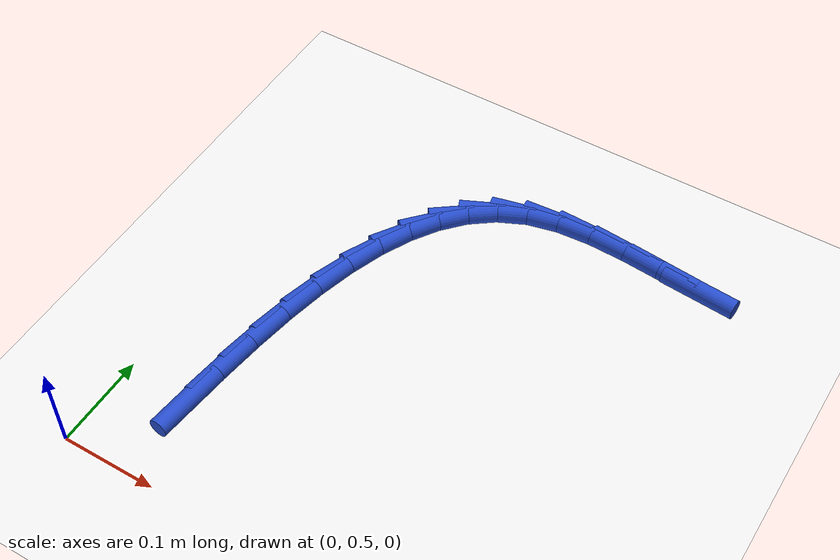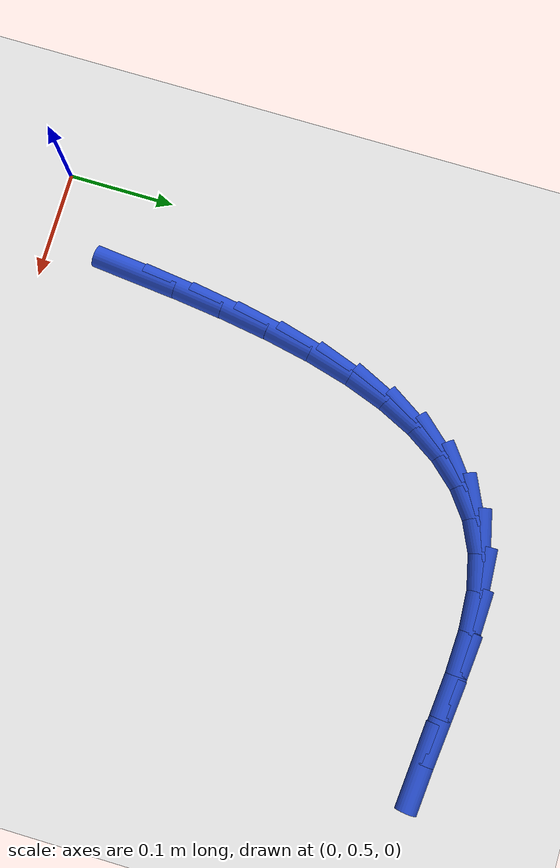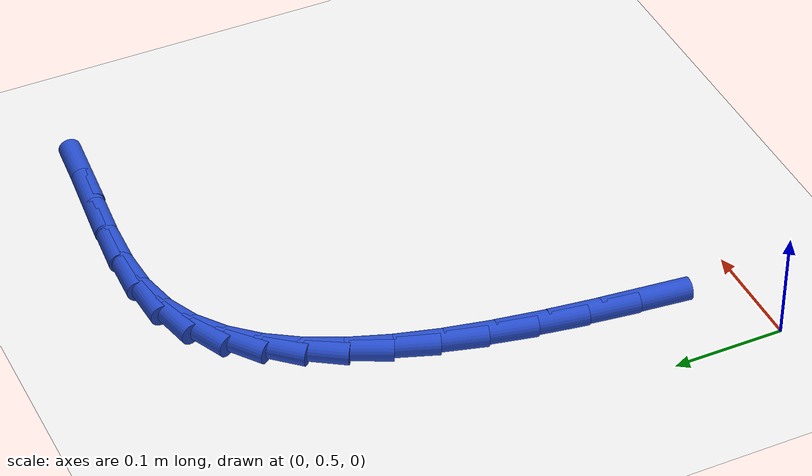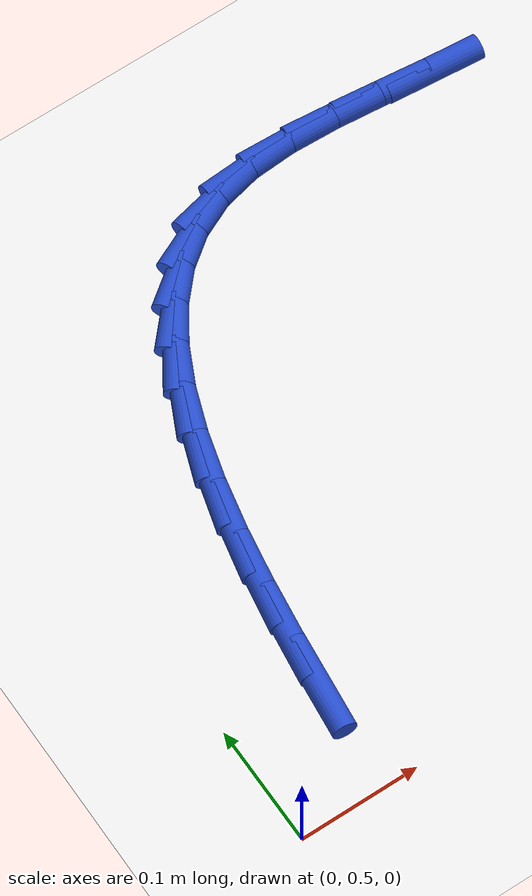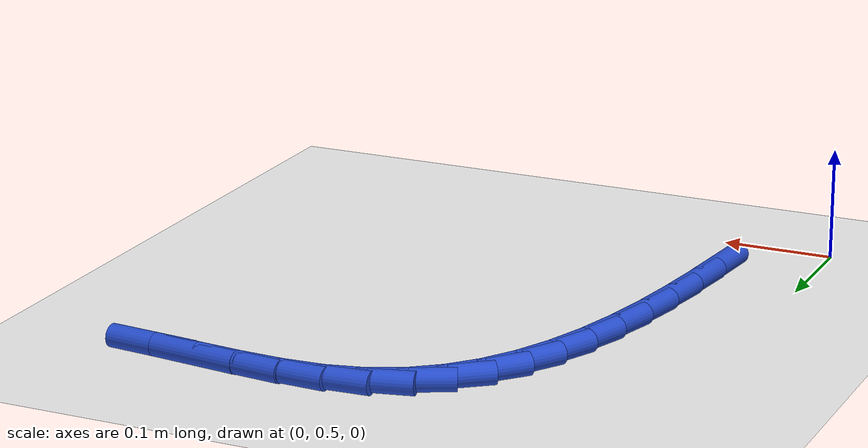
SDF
<sdf version="1.6">
 <world name="default">
  <model name="ground_plane">
   <static>1</static>
   <link name="link">
    <collision name="collision">
     <geometry><plane><normal>0 0 1</normal><size>100 100</size></plane></geometry>
     <surface><friction><ode><mu>100</mu><mu2>50</mu2></ode></friction></surface>
    </collision>
    <visual name="visual">
     <cast_shadows>0</cast_shadows>
     <geometry><plane><normal>0 0 1</normal><size>100 100</size></plane></geometry>
     <material>
      <script><uri>file://media/materials/scripts/gazebo.material</uri><name>Gazebo/WhiteGlow</name></script>
     </material>
    </visual>
   </link>
  </model>
  <model name="line">
   <link name="link_14">
    <pose>0.07465825569537324 0.5885819153979318 0.01 0 1.57 1.46659517966814</pose>
    <collision name="collision">
     <geometry><cylinder><radius>0.01</radius><length>0.08</length></cylinder></geometry>
    </collision>
    <visual name="visual">
     <material>
      <script><name>Gazebo/Blue</name><uri>file://media/materials/scripts/gazebo.material</uri></script>
     </material>
     <geometry><cylinder><radius>0.01</radius><length>0.08</length></cylinder></geometry>
    </visual>
   </link>
   <link name="link_15">
    <pose>0.07954700446312765 0.6353284461866449 0.01 0 1.57 1.4421311327295279</pose>
    <collision name="collision">
     <geometry><cylinder><radius>0.01</radius><length>0.08</length></cylinder></geometry>
    </collision>
    <visual name="visual">
     <material>
      <script><name>Gazebo/Blue</name><uri>file://media/materials/scripts/gazebo.material</uri></script>
     </material>
     <geometry><cylinder><radius>0.01</radius><length>0.08</length></cylinder></geometry>
    </visual>
   </link>
   <link name="link_16">
    <pose>0.08543941522436377 0.6808719134817292 0.01 0 1.57 1.4079597764265983</pose>
    <collision name="collision">
     <geometry><cylinder><radius>0.01</radius><length>0.08</length></cylinder></geometry>
    </collision>
    <visual name="visual">
     <material>
      <script><name>Gazebo/Blue</name><uri>file://media/materials/scripts/gazebo.material</uri></script>
     </material>
     <geometry><cylinder><radius>0.01</radius><length>0.08</length></cylinder></geometry>
    </visual>
   </link>
   <link name="link_17">
    <pose>0.09264677182831442 0.7247413082283588 0.01 0 1.57 1.3621638959719053</pose>
    <collision name="collision">
     <geometry><cylinder><radius>0.01</radius><length>0.08</length></cylinder></geometry>
    </collision>
    <visual name="visual">
     <material>
      <script><name>Gazebo/Blue</name><uri>file://media/materials/scripts/gazebo.material</uri></script>
     </material>
     <geometry><cylinder><radius>0.01</radius><length>0.08</length></cylinder></geometry>
    </visual>
   </link>
   <link name="link_18">
    <pose>0.1014803581242125 0.7664656213717077 0.01 0 1.57 1.3020417501642993</pose>
    <collision name="collision">
     <geometry><cylinder><radius>0.01</radius><length>0.08</length></cylinder></geometry>
    </collision>
    <visual name="visual">
     <material>
      <script><name>Gazebo/Blue</name><uri>file://media/materials/scripts/gazebo.material</uri></script>
     </material>
     <geometry><cylinder><radius>0.01</radius><length>0.08</length></cylinder></geometry>
    </visual>
   </link>
   <link name="link_19">
    <pose>0.11225145796129088 0.8055738438569505 0.01 0 1.57 1.2239561674179427</pose>
    <collision name="collision">
     <geometry><cylinder><radius>0.01</radius><length>0.08</length></cylinder></geometry>
    </collision>
    <visual name="visual">
     <material>
      <script><name>Gazebo/Blue</name><uri>file://media/materials/scripts/gazebo.material</uri></script>
     </material>
     <geometry><cylinder><radius>0.01</radius><length>0.08</length></cylinder></geometry>
    </visual>
   </link>
   <link name="link_20">
    <pose>0.12527135518878235 0.8415949666292606 0.01 0 1.57 1.1233331412053595</pose>
    <collision name="collision">
     <geometry><cylinder><radius>0.01</radius><length>0.08</length></cylinder></geometry>
    </collision>
    <visual name="visual">
     <material>
      <script><name>Gazebo/Blue</name><uri>file://media/materials/scripts/gazebo.material</uri></script>
     </material>
     <geometry><cylinder><radius>0.01</radius><length>0.08</length></cylinder></geometry>
    </visual>
   </link>
   <link name="link_21">
    <pose>0.1408513336559198 0.8740579806338125 0.01 0 1.57 0.9951802214433075</pose>
    <collision name="collision">
     <geometry><cylinder><radius>0.01</radius><length>0.08</length></cylinder></geometry>
    </collision>
    <visual name="visual">
     <material>
      <script><name>Gazebo/Blue</name><uri>file://media/materials/scripts/gazebo.material</uri></script>
     </material>
     <geometry><cylinder><radius>0.01</radius><length>0.08</length></cylinder></geometry>
    </visual>
   </link>
   <link name="link_22">
    <pose>0.15930267721193614 0.9024918768157799 0.01 0 1.57 0.8358247603251658</pose>
    <collision name="collision">
     <geometry><cylinder><radius>0.01</radius><length>0.08</length></cylinder></geometry>
    </collision>
    <visual name="visual">
     <material>
      <script><name>Gazebo/Blue</name><uri>file://media/materials/scripts/gazebo.material</uri></script>
     </material>
     <geometry><cylinder><radius>0.01</radius><length>0.08</length></cylinder></geometry>
    </visual>
   </link>
   <link name="link_23">
    <pose>0.18093666970606417 0.9264256461203375 0.01 0 1.57 0.6464665310243447</pose>
    <collision name="collision">
     <geometry><cylinder><radius>0.01</radius><length>0.08</length></cylinder></geometry>
    </collision>
    <visual name="visual">
     <material>
      <script><name>Gazebo/Blue</name><uri>file://media/materials/scripts/gazebo.material</uri></script>
     </material>
     <geometry><cylinder><radius>0.01</radius><length>0.08</length></cylinder></geometry>
    </visual>
   </link>
   <link name="link_24">
    <pose>0.20606459498753663 0.9453882794926585 0.01 0 1.57 0.43714799070508614</pose>
    <collision name="collision">
     <geometry><cylinder><radius>0.01</radius><length>0.08</length></cylinder></geometry>
    </collision>
    <visual name="visual">
     <material>
      <script><name>Gazebo/Blue</name><uri>file://media/materials/scripts/gazebo.material</uri></script>
     </material>
     <geometry><cylinder><radius>0.01</radius><length>0.08</length></cylinder></geometry>
    </visual>
   </link>
   <link name="link_25">
    <pose>0.23499773690558656 0.9589087678779178 0.01 0 1.57 0.22762469775456456</pose>
    <collision name="collision">
     <geometry><cylinder><radius>0.01</radius><length>0.08</length></cylinder></geometry>
    </collision>
    <visual name="visual">
     <material>
      <script><name>Gazebo/Blue</name><uri>file://media/materials/scripts/gazebo.material</uri></script>
     </material>
     <geometry><cylinder><radius>0.01</radius><length>0.08</length></cylinder></geometry>
    </visual>
   </link>
   <link name="link_26">
    <pose>0.26802168174091184 0.9665584089199662 0.01 0 1.57 0.06284638136740443</pose>
    <collision name="collision">
     <geometry><cylinder><radius>0.01</radius><length>0.08</length></cylinder></geometry>
    </collision>
    <visual name="visual">
     <material>
      <script><name>Gazebo/Blue</name><uri>file://media/materials/scripts/gazebo.material</uri></script>
     </material>
     <geometry><cylinder><radius>0.01</radius><length>0.08</length></cylinder></geometry>
    </visual>
   </link>
   <link name="link_27">
    <pose>0.3048349291350598 0.9688750390815352 0.01 0 1.57 -0.03814257007176209</pose>
    <collision name="collision">
     <geometry><cylinder><radius>0.01</radius><length>0.08</length></cylinder></geometry>
    </collision>
    <visual name="visual">
     <material>
      <script><name>Gazebo/Blue</name><uri>file://media/materials/scripts/gazebo.material</uri></script>
     </material>
     <geometry><cylinder><radius>0.01</radius><length>0.08</length></cylinder></geometry>
    </visual>
   </link>
   <link name="link_28">
    <pose>0.3445510822863838 0.9673594278571638 0.01 0 1.57 -0.09099078883400784</pose>
    <collision name="collision">
     <geometry><cylinder><radius>0.01</radius><length>0.08</length></cylinder></geometry>
    </collision>
    <visual name="visual">
     <material>
      <script><name>Gazebo/Blue</name><uri>file://media/materials/scripts/gazebo.material</uri></script>
     </material>
     <geometry><cylinder><radius>0.01</radius><length>0.08</length></cylinder></geometry>
    </visual>
   </link>
   <link name="link_29">
    <pose>0.38625848486581205 0.9635539302794967 0.01 0 1.57 -0.1060125717412685</pose>
    <collision name="collision">
     <geometry><cylinder><radius>0.01</radius><length>0.08</length></cylinder></geometry>
    </collision>
    <visual name="visual">
     <material>
      <script><name>Gazebo/Blue</name><uri>file://media/materials/scripts/gazebo.material</uri></script>
     </material>
     <geometry><cylinder><radius>0.01</radius><length>0.08</length></cylinder></geometry>
    </visual>
   </link>
   <link name="link_30">
    <pose>0.42904548054427294 0.959000901381178 0.01 0 1.57 -0.08726959436672126</pose>
    <collision name="collision">
     <geometry><cylinder><radius>0.01</radius><length>0.08</length></cylinder></geometry>
    </collision>
    <visual name="visual">
     <material>
      <script><name>Gazebo/Blue</name><uri>file://media/materials/scripts/gazebo.material</uri></script>
     </material>
     <geometry><cylinder><radius>0.01</radius><length>0.08</length></cylinder></geometry>
    </visual>
   </link>
  </model>
 </world>
</sdf>
